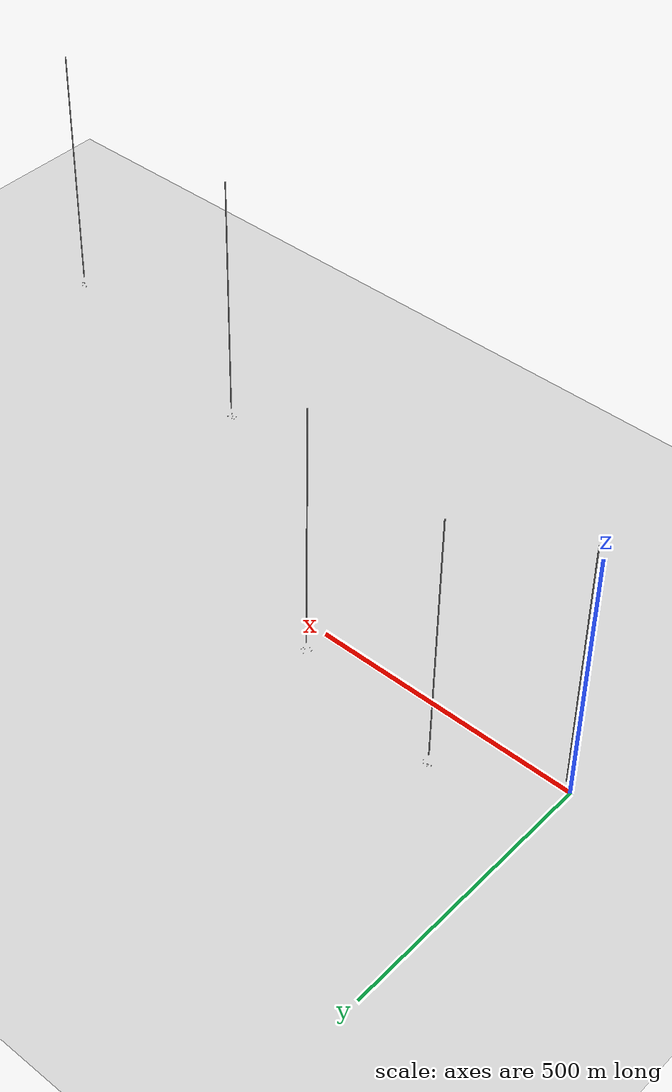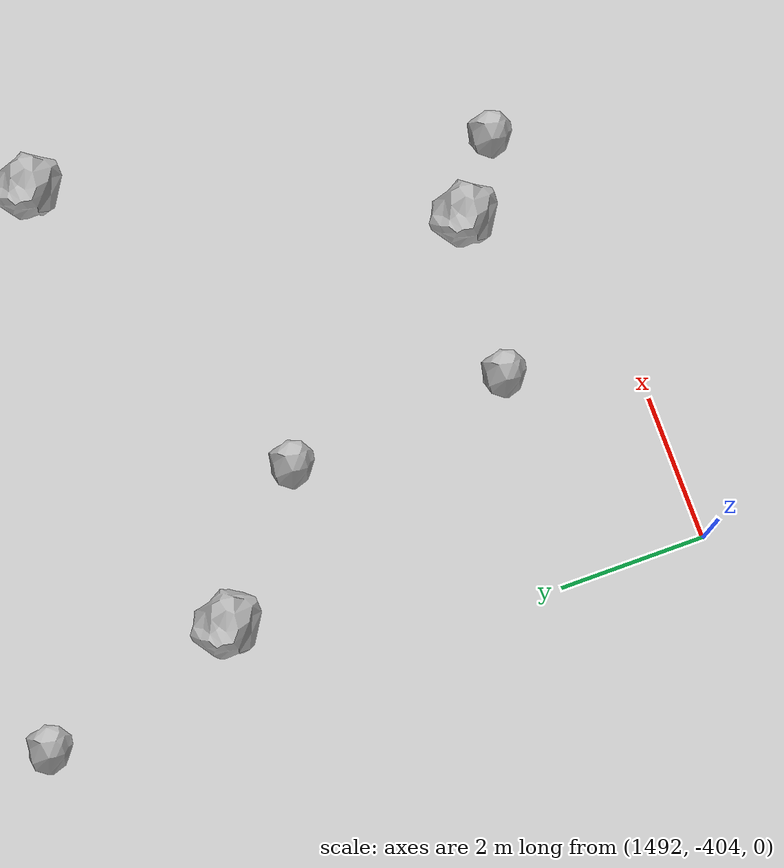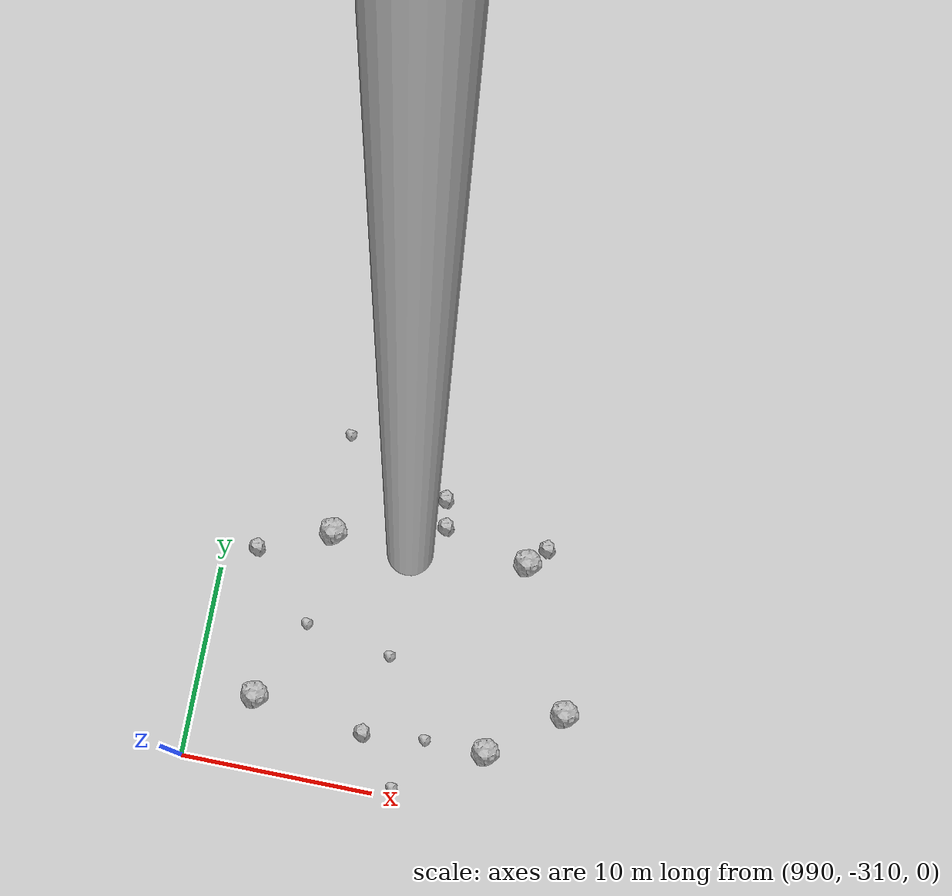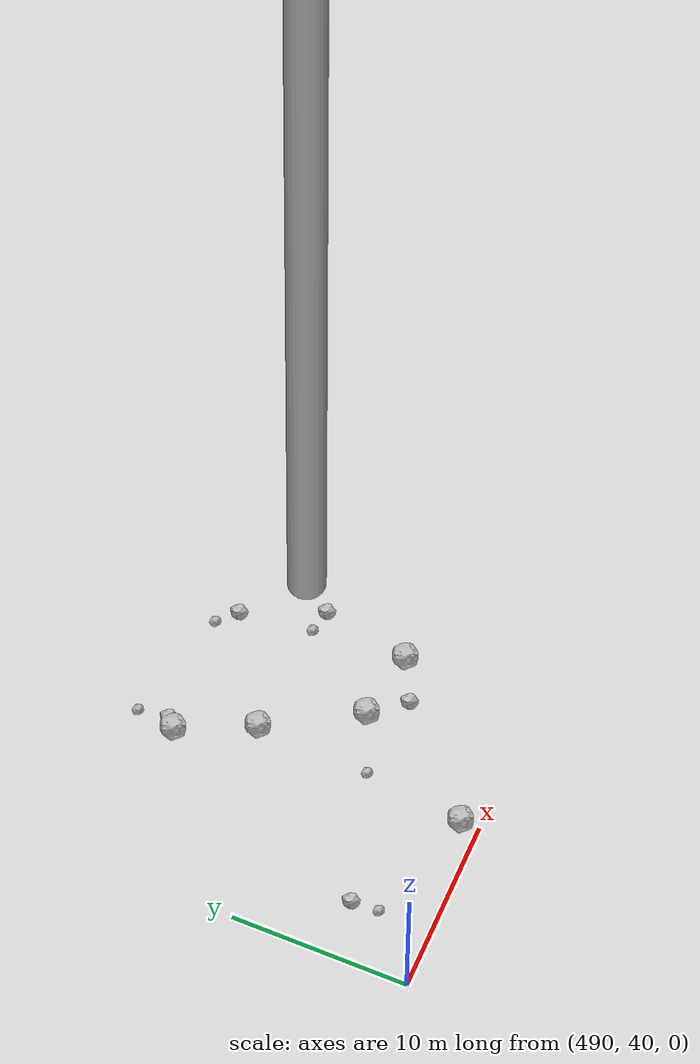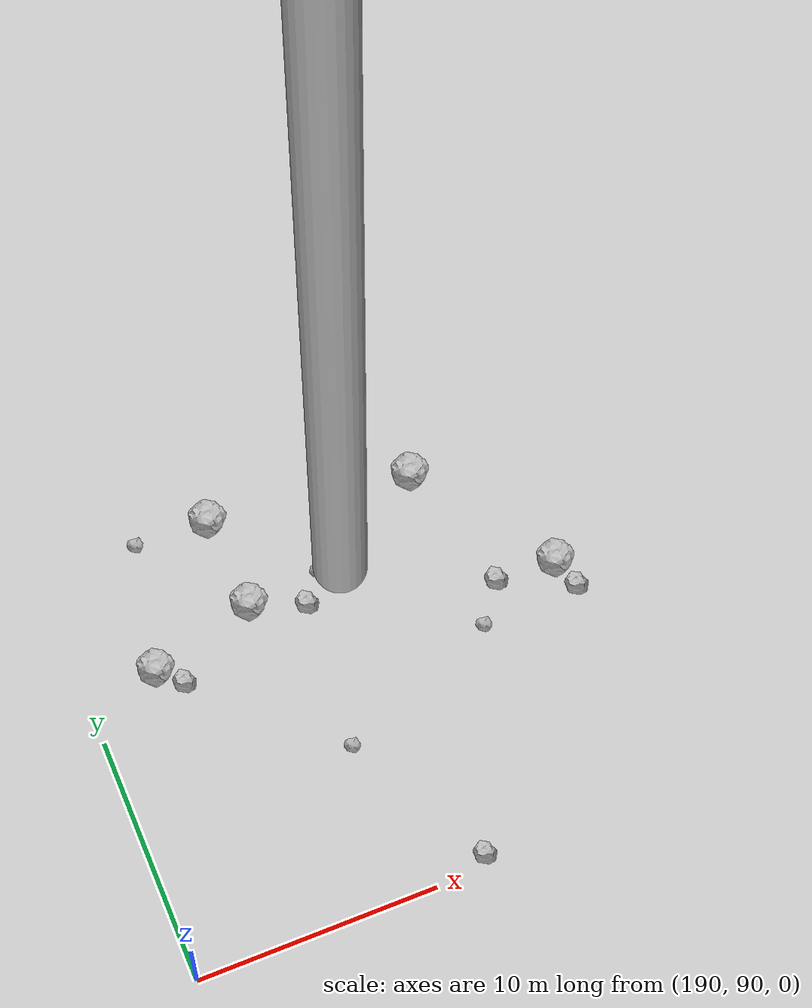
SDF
<?xml version="1.0" ?>
<sdf version="1.6">
  <world name="default">

    <include>
      <uri>model://custom_ground</uri>
    </include>

    <include>
      <uri>model://sun</uri>
    </include>

    <spherical_coordinates>
      <surface_model>EARTH_WGS84</surface_model>
      <latitude_deg>38.161479</latitude_deg>
      <longitude_deg>-122.454630</longitude_deg>
      <elevation>488.0</elevation>
      <heading_deg>90</heading_deg>
    </spherical_coordinates>

    <model name="rock1_0_0">
      <include>
        <uri>model://rock1</uri>
        <pose>4.994836164940151 1.2392303391108133 0.5 0 0 0</pose>
      </include>
    </model>
    <model name="rock1_0_1">
      <include>
        <uri>model://rock1</uri>
        <pose>10.665461102527637 -2.5111260794788937 0.5 0 0 0</pose>
      </include>
    </model>
    <model name="rock1_0_2">
      <include>
        <uri>model://rock1</uri>
        <pose>17.6709332138233 0.32158045363848586 0.5 0 0 0</pose>
      </include>
    </model>
    <model name="rock1_0_3">
      <include>
        <uri>model://rock1</uri>
        <pose>8.94447220570777 3.5749650883266586 0.5 0 0 0</pose>
      </include>
    </model>
    <model name="rock1_0_4">
      <include>
        <uri>model://rock1</uri>
        <pose>16.285191326901366 -3.433956574326789 0.5 0 0 0</pose>
      </include>
    </model>
    <model name="rock2_0_0">
      <include>
        <uri>model://rock2</uri>
        <pose>18.645028065206127 3.4896495803617746 0.3 0 0 0</pose>
      </include>
    </model>
    <model name="rock2_0_1">
      <include>
        <uri>model://rock2</uri>
        <pose>6.312518334818167 -8.6060748013096 0.3 0 0 0</pose>
      </include>
    </model>
    <model name="rock2_0_2">
      <include>
        <uri>model://rock2</uri>
        <pose>13.635642916184043 -7.941668071249035 0.3 0 0 0</pose>
      </include>
    </model>
    <model name="rock2_0_3">
      <include>
        <uri>model://rock2</uri>
        <pose>7.46849914325982 -0.7080228657882444 0.3 0 0 0</pose>
      </include>
    </model>
    <model name="rock2_0_4">
      <include>
        <uri>model://rock2</uri>
        <pose>11.634248699943981 8.38197229145537 0.3 0 0 0</pose>
      </include>
    </model>
    <model name="rock3_0_0">
      <include>
        <uri>model://rock3</uri>
        <pose>14.367544946551995 1.5088551179479985 0.2 0 0 0</pose>
      </include>
    </model>
    <model name="rock3_0_1">
      <include>
        <uri>model://rock3</uri>
        <pose>5.153233077886292 7.201687169020353 0.2 0 0 0</pose>
      </include>
    </model>
    <model name="rock3_0_2">
      <include>
        <uri>model://rock3</uri>
        <pose>7.326441845453189 -9.024306866903087 0.2 0 0 0</pose>
      </include>
    </model>
    <model name="rock3_0_3">
      <include>
        <uri>model://rock3</uri>
        <pose>12.748477003975689 -4.158735241866722 0.2 0 0 0</pose>
      </include>
    </model>
    <model name="rock3_0_4">
      <include>
        <uri>model://rock3</uri>
        <pose>17.393271247874928 6.106455429623342 0.2 0 0 0</pose>
      </include>
    </model>
    <model name="rock1_1_0">
      <include>
        <uri>model://rock1</uri>
        <pose>192.95946724637352 102.02221207643208 0.5 0 0 0</pose>
      </include>
    </model>
    <model name="rock1_1_1">
      <include>
        <uri>model://rock1</uri>
        <pose>197.30137810817268 103.12329221453142 0.5 0 0 0</pose>
      </include>
    </model>
    <model name="rock1_1_2">
      <include>
        <uri>model://rock1</uri>
        <pose>196.98306000644354 106.77962928915548 0.5 0 0 0</pose>
      </include>
    </model>
    <model name="rock1_1_3">
      <include>
        <uri>model://rock1</uri>
        <pose>209.11122657614362 100.340586763098 0.5 0 0 0</pose>
      </include>
    </model>
    <model name="rock1_1_4">
      <include>
        <uri>model://rock1</uri>
        <pose>205.0702115823111 105.62400735858903 0.5 0 0 0</pose>
      </include>
    </model>
    <model name="rock2_1_0">
      <include>
        <uri>model://rock2</uri>
        <pose>209.49449891698885 99.11556778169765 0.3 0 0 0</pose>
      </include>
    </model>
    <model name="rock2_1_1">
      <include>
        <uri>model://rock2</uri>
        <pose>206.6367135258926 100.44567640624821 0.3 0 0 0</pose>
      </include>
    </model>
    <model name="rock2_1_2">
      <include>
        <uri>model://rock2</uri>
        <pose>199.39063426526732 102.28598868018133 0.3 0 0 0</pose>
      </include>
    </model>
    <model name="rock2_1_3">
      <include>
        <uri>model://rock2</uri>
        <pose>202.23529437626271 90.54974976431535 0.3 0 0 0</pose>
      </include>
    </model>
    <model name="rock2_1_4">
      <include>
        <uri>model://rock2</uri>
        <pose>193.79583274303462 101.1296111687578 0.3 0 0 0</pose>
      </include>
    </model>
    <model name="rock3_1_0">
      <include>
        <uri>model://rock3</uri>
        <pose>205.51572999631824 98.92488573796429 0.2 0 0 0</pose>
      </include>
    </model>
    <model name="rock3_1_1">
      <include>
        <uri>model://rock3</uri>
        <pose>198.97105768527993 96.36427569897438 0.2 0 0 0</pose>
      </include>
    </model>
    <model name="rock3_1_2">
      <include>
        <uri>model://rock3</uri>
        <pose>201.83750821696572 105.67327045690674 0.2 0 0 0</pose>
      </include>
    </model>
    <model name="rock3_1_3">
      <include>
        <uri>model://rock3</uri>
        <pose>193.94137035375954 106.85118523865872 0.2 0 0 0</pose>
      </include>
    </model>
    <model name="rock3_1_4">
      <include>
        <uri>model://rock3</uri>
        <pose>200.23655127444817 103.28045652769677 0.2 0 0 0</pose>
      </include>
    </model>
    <model name="rock1_2_0">
      <include>
        <uri>model://rock1</uri>
        <pose>498.9815546658768 57.39501075484264 0.5 0 0 0</pose>
      </include>
    </model>
    <model name="rock1_2_1">
      <include>
        <uri>model://rock1</uri>
        <pose>507.86242764158783 47.597849875360026 0.5 0 0 0</pose>
      </include>
    </model>
    <model name="rock1_2_2">
      <include>
        <uri>model://rock1</uri>
        <pose>503.9551721073706 48.21190619655411 0.5 0 0 0</pose>
      </include>
    </model>
    <model name="rock1_2_3">
      <include>
        <uri>model://rock1</uri>
        <pose>499.9636543929062 41.077894467468326 0.5 0 0 0</pose>
      </include>
    </model>
    <model name="rock1_2_4">
      <include>
        <uri>model://rock1</uri>
        <pose>500.90805469648507 53.26291797948883 0.5 0 0 0</pose>
      </include>
    </model>
    <model name="rock2_2_0">
      <include>
        <uri>model://rock2</uri>
        <pose>499.4843276103876 57.87632951625564 0.3 0 0 0</pose>
      </include>
    </model>
    <model name="rock2_2_1">
      <include>
        <uri>model://rock2</uri>
        <pose>505.46008225651633 46.35674978884978 0.3 0 0 0</pose>
      </include>
    </model>
    <model name="rock2_2_2">
      <include>
        <uri>model://rock2</uri>
        <pose>508.77061879198135 52.615134779143716 0.3 0 0 0</pose>
      </include>
    </model>
    <model name="rock2_2_3">
      <include>
        <uri>model://rock2</uri>
        <pose>506.8715644126184 56.98730455050205 0.3 0 0 0</pose>
      </include>
    </model>
    <model name="rock2_2_4">
      <include>
        <uri>model://rock2</uri>
        <pose>493.2668928768187 44.58306443953234 0.3 0 0 0</pose>
      </include>
    </model>
    <model name="rock3_2_0">
      <include>
        <uri>model://rock3</uri>
        <pose>507.43325029051556 52.867168057176784 0.2 0 0 0</pose>
      </include>
    </model>
    <model name="rock3_2_1">
      <include>
        <uri>model://rock3</uri>
        <pose>500.6100259975291 46.77276803611499 0.2 0 0 0</pose>
      </include>
    </model>
    <model name="rock3_2_2">
      <include>
        <uri>model://rock3</uri>
        <pose>505.8583853875457 57.94909565289118 0.2 0 0 0</pose>
      </include>
    </model>
    <model name="rock3_2_3">
      <include>
        <uri>model://rock3</uri>
        <pose>499.26955605043435 59.598038074608844 0.2 0 0 0</pose>
      </include>
    </model>
    <model name="rock3_2_4">
      <include>
        <uri>model://rock3</uri>
        <pose>493.3371091047558 43.01916195601676 0.2 0 0 0</pose>
      </include>
    </model>
    <model name="rock1_3_0">
      <include>
        <uri>model://rock1</uri>
        <pose>995.3941389783947 -297.06893569247455 0.5 0 0 0</pose>
      </include>
    </model>
    <model name="rock1_3_1">
      <include>
        <uri>model://rock1</uri>
        <pose>993.1009667553915 -306.2132558553979 0.5 0 0 0</pose>
      </include>
    </model>
    <model name="rock1_3_2">
      <include>
        <uri>model://rock1</uri>
        <pose>1009.0129862763217 -304.0957029902528 0.5 0 0 0</pose>
      </include>
    </model>
    <model name="rock1_3_3">
      <include>
        <uri>model://rock1</uri>
        <pose>1005.6619406169436 -296.7355740980972 0.5 0 0 0</pose>
      </include>
    </model>
    <model name="rock1_3_4">
      <include>
        <uri>model://rock1</uri>
        <pose>1005.3686835300208 -306.80129466968486 0.5 0 0 0</pose>
      </include>
    </model>
    <model name="rock2_3_0">
      <include>
        <uri>model://rock2</uri>
        <pose>991.6552876511211 -298.61341508547025 0.3 0 0 0</pose>
      </include>
    </model>
    <model name="rock2_3_1">
      <include>
        <uri>model://rock2</uri>
        <pose>998.9236700142482 -307.0555761813399 0.3 0 0 0</pose>
      </include>
    </model>
    <model name="rock2_3_2">
      <include>
        <uri>model://rock2</uri>
        <pose>1000.8263687017885 -294.2145522237705 0.3 0 0 0</pose>
      </include>
    </model>
    <model name="rock2_3_3">
      <include>
        <uri>model://rock2</uri>
        <pose>1001.1167598555651 -295.65005053089027 0.3 0 0 0</pose>
      </include>
    </model>
    <model name="rock2_3_4">
      <include>
        <uri>model://rock2</uri>
        <pose>1006.5294892948779 -295.7761699437993 0.3 0 0 0</pose>
      </include>
    </model>
    <model name="rock3_3_0">
      <include>
        <uri>model://rock3</uri>
        <pose>1000.9630263495208 -309.5413734526921 0.2 0 0 0</pose>
      </include>
    </model>
    <model name="rock3_3_1">
      <include>
        <uri>model://rock3</uri>
        <pose>999.5367132058346 -302.8870377984569 0.2 0 0 0</pose>
      </include>
    </model>
    <model name="rock3_3_2">
      <include>
        <uri>model://rock3</uri>
        <pose>995.2675125053873 -291.8285695684414 0.2 0 0 0</pose>
      </include>
    </model>
    <model name="rock3_3_3">
      <include>
        <uri>model://rock3</uri>
        <pose>1002.1584675330389 -306.7972136862662 0.2 0 0 0</pose>
      </include>
    </model>
    <model name="rock3_3_4">
      <include>
        <uri>model://rock3</uri>
        <pose>994.9779418237965 -302.0542985640523 0.2 0 0 0</pose>
      </include>
    </model>
    <model name="rock1_4_0">
      <include>
        <uri>model://rock1</uri>
        <pose>1501.5276035013023 -395.4473251496837 0.5 0 0 0</pose>
      </include>
    </model>
    <model name="rock1_4_1">
      <include>
        <uri>model://rock1</uri>
        <pose>1493.3448279822892 -392.6039502850038 0.5 0 0 0</pose>
      </include>
    </model>
    <model name="rock1_4_2">
      <include>
        <uri>model://rock1</uri>
        <pose>1500.6854174367656 -404.8183242744656 0.5 0 0 0</pose>
      </include>
    </model>
    <model name="rock1_4_3">
      <include>
        <uri>model://rock1</uri>
        <pose>1509.7402707287588 -400.3823584841573 0.5 0 0 0</pose>
      </include>
    </model>
    <model name="rock1_4_4">
      <include>
        <uri>model://rock1</uri>
        <pose>1504.440306037091 -403.956179169292 0.5 0 0 0</pose>
      </include>
    </model>
    <model name="rock2_4_0">
      <include>
        <uri>model://rock2</uri>
        <pose>1499.5599806742912 -397.07845046704074 0.3 0 0 0</pose>
      </include>
    </model>
    <model name="rock2_4_1">
      <include>
        <uri>model://rock2</uri>
        <pose>1493.0554383648007 -397.647537692935 0.3 0 0 0</pose>
      </include>
    </model>
    <model name="rock2_4_2">
      <include>
        <uri>model://rock2</uri>
        <pose>1506.5796443039917 -404.7001697125789 0.3 0 0 0</pose>
      </include>
    </model>
    <model name="rock2_4_3">
      <include>
        <uri>model://rock2</uri>
        <pose>1497.1951482805248 -402.4980340291014 0.3 0 0 0</pose>
      </include>
    </model>
    <model name="rock2_4_4">
      <include>
        <uri>model://rock2</uri>
        <pose>1509.0287254628001 -402.5313655976991 0.3 0 0 0</pose>
      </include>
    </model>
    <model name="rock3_4_0">
      <include>
        <uri>model://rock3</uri>
        <pose>1494.959588522255 -402.28414732898904 0.2 0 0 0</pose>
      </include>
    </model>
    <model name="rock3_4_1">
      <include>
        <uri>model://rock3</uri>
        <pose>1509.1459815074152 -400.5327114112644 0.2 0 0 0</pose>
      </include>
    </model>
    <model name="rock3_4_2">
      <include>
        <uri>model://rock3</uri>
        <pose>1494.769396014347 -399.1931545456892 0.2 0 0 0</pose>
      </include>
    </model>
    <model name="rock3_4_3">
      <include>
        <uri>model://rock3</uri>
        <pose>1492.2872193003373 -394.932571560311 0.2 0 0 0</pose>
      </include>
    </model>
    <model name="rock3_4_4">
      <include>
        <uri>model://rock3</uri>
        <pose>1498.1209141684983 -403.2430777831495 0.2 0 0 0</pose>
      </include>
    </model>

    <model name="cylinder_1">
      <static>true</static>
      <link name="link">
        <visual name="visual">
          <geometry>
            <cylinder>
              <radius>1</radius>
              <length>500</length>
            </cylinder>
          </geometry>
        </visual>
      </link>
      <pose>10 0 270 0 0 0</pose>
    </model>

    <model name="cylinder_2">
      <static>true</static>
      <link name="link">
        <visual name="visual">
          <geometry>
            <cylinder>
              <radius>1</radius>
              <length>500</length>
            </cylinder>
          </geometry>
        </visual>
      </link>
      <pose>200 100 270 0 0 0</pose>
    </model>

    <model name="cylinder_3">
      <static>true</static>
      <link name="link">
        <visual name="visual">
          <geometry>
            <cylinder>
              <radius>1</radius>
              <length>500</length>
            </cylinder>
          </geometry>
        </visual>
      </link>
      <pose>500 50 270 0 0 0</pose>
    </model>

    <model name="cylinder_4">
      <static>true</static>
      <link name="link">
        <visual name="visual">
          <geometry>
            <cylinder>
              <radius>1</radius>
              <length>500</length>
            </cylinder>
          </geometry>
        </visual>
      </link>
      <pose>1000 -300 270 0 0 0</pose>
    </model>

    <model name="cylinder_5">
      <static>true</static>
      <link name="link">
        <visual name="visual">
          <geometry>
            <cylinder>
              <radius>1</radius>
              <length>500</length>
            </cylinder>
          </geometry>
        </visual>
      </link>
      <pose>1500 -400 270 0 0 0</pose>
    </model>

  </world>
</sdf>

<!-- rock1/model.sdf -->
<sdf version="1.6">
  <model name="rock1">
    <static>true</static> <!-- Set to true if the model should not move -->
    <pose>0 0 0 0 0 0</pose>

    <!--z offset is 0.5 for full scale-->

    <link name="link">
      <collision name="rock1_collision">
        <geometry>
          <mesh>
            <uri>model://meshes/rock1.dae</uri>
          </mesh>
        </geometry>
      </collision>
      <visual name="rock1_visual">
        <geometry>
          <mesh>
            <uri>model://meshes/rock1.dae</uri>
          </mesh>
        </geometry>
        <material>
          <script>
            <uri>model://materials/scripts/sand_pebbles.material</uri>
            <name>custom_ground/Image</name>
          </script>
        </material>
      </visual>
    </link>
  </model>
</sdf>

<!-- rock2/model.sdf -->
<sdf version="1.6">
  <model name="rock2">
    <static>true</static> <!-- Set to true if the model should not move -->
    <pose>0 0 0 0 0 0</pose>

    <!--z offset is 0.3 for full scale-->

    <link name="link">
      <collision name="rock2_collision">
        <geometry>
          <mesh>
            <uri>model://meshes/rock2.dae</uri>
          </mesh>
        </geometry>
      </collision>
      <visual name="rock2_visual">
        <geometry>
          <mesh>
            <uri>model://meshes/rock2.dae</uri>
          </mesh>
        </geometry>
        <material>
          <script>
            <uri>model://materials/scripts/sand_pebbles.material</uri>
            <name>custom_ground/Image</name>
          </script>
        </material>
      </visual>
    </link>
  </model>
</sdf>

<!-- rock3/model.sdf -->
<sdf version="1.6">
  <model name="rock3">
    <static>true</static> <!-- Set to true if the model should not move -->
    <pose>0 0 0 0 0 0</pose>

    <!--z offset is 0.2 for full scale-->

    <link name="link">
      <collision name="rock3_collision">
        <geometry>
          <mesh>
            <uri>model://meshes/rock3.dae</uri>
          </mesh>
        </geometry>
      </collision>
      <visual name="rock3_visual">
        <geometry>
          <mesh>
            <uri>model://meshes/rock3.dae</uri>
          </mesh>
        </geometry>
        <material>
          <script>
            <uri>model://materials/scripts/sand_pebbles.material</uri>
            <name>custom_ground/Image</name>
          </script>
        </material>
      </visual>
    </link>
  </model>
</sdf>

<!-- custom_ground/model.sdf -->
<sdf version="1.6">
  <model name="custom_ground">
    <static>true</static> <!-- Ground is static and immovable -->
    <link name="ground_link">
      <pose>240 0 0 0 0 0</pose> <!-- Position and orientation relative to the world -->
      <!-- Visual Representation -->
      <visual name="ground_visual">
        <geometry>
          <plane>
            <normal>0 0 1</normal> <!-- Upward facing plane -->
            <size>500 500</size> <!-- Size of the plane -->
          </plane>
        </geometry>
        <material>
          <script>
            <uri>model://materials/scripts/sand_pebbles.material</uri>
            <name>custom_ground/Image</name>
          </script>
        </material>
      </visual>

      <!-- Collision Representation -->
      <collision name="ground_collision">
        <geometry>
          <plane>
            <normal>0 0 1</normal>
            <size>100 100</size>
          </plane>
        </geometry>
      </collision>

    </link>
  </model>
</sdf>
